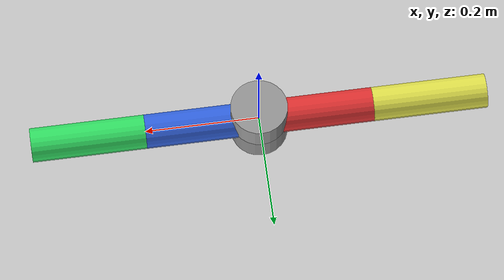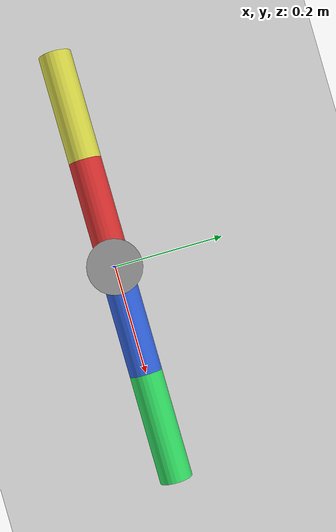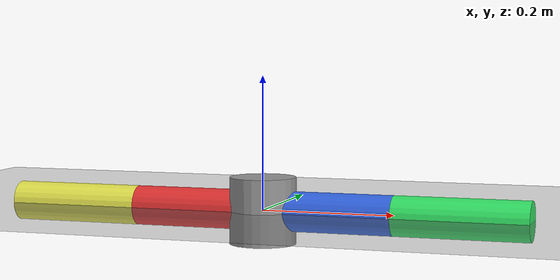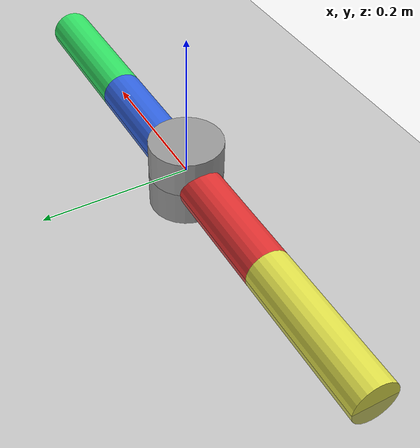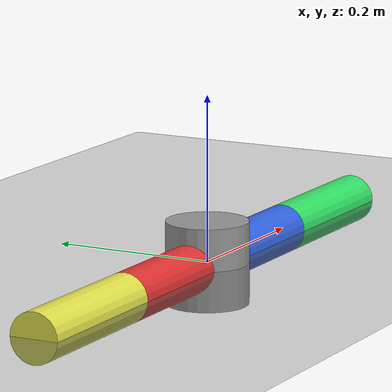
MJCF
<mujoco model="simple_2dof_robot_with_two_arms">
  <option iterations="50" timestep="0.001" solver="PGS" gravity="0 0 -9.81" />
  <compiler angle="radian" meshdir="meshes" eulerseq="zyx" autolimits="true" />
  <default>
    <joint limited="true" damping="0.01" armature="0.01" frictionloss="0.01" />
    <geom condim="4" contype="1" conaffinity="15" friction="0.9 0.2 0.2" solref="0.001 2" />
    <motor ctrllimited="true" />
    <equality solref="0.001 2" />
    <default class="visualgeom">
      <geom material="visualgeom" condim="1" contype="0" conaffinity="0" />
    </default>
  </default>

  <worldbody>
    <light directional="true" diffuse="0.4 0.4 0.4" specular="0.1 0.1 0.1" pos="0 0 5.0" dir="0 0 -1" castshadow="false" />
    <light directional="true" diffuse="0.6 0.6 0.6" specular="0.2 0.2 0.2" pos="0 0 4" dir="0 0 -1" />
    <geom name="ground" type="plane" pos="0 0 0" size="100 100 0.001" quat="1 0 0 0" material="matplane" condim="3" conaffinity="15" />

    <camera name="fixed" pos="0 -3.0 0.5" xyaxes="1 0 0 0 0 1" />
    <camera name="track" mode="trackcom" pos="0 -3.0 0.5" xyaxes="1 0 0 0 0 1" />

    <body name="root" pos="0 0 0" quat="1 0 0 0">
      <!-- No joint here: root body fixed to world -->
      <inertial pos="0 0 0" mass="1" diaginertia="0.01 0.01 0.01" />

      <site name="imu" size="0.01" pos="0 0 0" />

      <body name="base_link">
        <inertial pos="0 0 0" mass="2.0" diaginertia="0.01 0.01 0.01" />
        <joint name="base_joint" type="hinge" pos="0 0 0" axis="0 0 1" range="-3.14 3.14" actuatorfrcrange="-10 10" />
        <geom size="0.05 0.05" type="cylinder" rgba="0.6 0.6 0.6 1" contype="1" conaffinity="0" density="0" group="1" class="visualgeom" />
        <geom type="cylinder" rgba="0.6 0.6 0.6 1" size="0.05 0.05" />

        <body name="link1">
          <inertial pos="0 0 0" mass="1" diaginertia="0.005 0.005 0.005" />
          <joint name="joint1" pos="0 0 0" axis="0 0 1" range="-3.14 3.14" actuatorfrcrange="-10 10" />
          <geom size="0.03 0.1" pos="0.1 0 0" quat="0.707105 0 0.707108 0" type="cylinder" rgba="0.2 0.4 0.9 1" contype="1" conaffinity="0" density="0" group="1" class="visualgeom" />
          <geom type="cylinder" rgba="0.2 0.4 0.9 1" pos="0.1 0 0" size="0.03 0.1" quat="0.707105 0 0.707108 0" />

          <body name="link2" pos="0.2 0 0">
            <inertial pos="0 0 0" mass="1" diaginertia="0.005 0.005 0.005" />
            <joint name="joint2" pos="0 0 0" axis="0 0 1" range="-3.14 3.14" actuatorfrcrange="-10 10" />
            <geom size="0.03 0.1" pos="0.1 0 0" quat="0.707105 0 0.707108 0" type="cylinder" rgba="0.2 0.9 0.4 1" contype="1" conaffinity="0" density="0" group="1" class="visualgeom" />
            <geom type="cylinder" rgba="0.2 0.9 0.4 1" pos="0.1 0 0" size="0.03 0.1" quat="0.707105 0 0.707108 0" />
          </body>
        </body>

        <body name="link3">
          <inertial pos="0 0 0" mass="1" diaginertia="0.005 0.005 0.005" />
          <joint name="joint3" pos="0 0 0" axis="0 0 1" range="-3.14 3.14" actuatorfrcrange="-10 10" />
          <geom size="0.03 0.1" pos="-0.1 0 0" quat="0.707105 0 0.707108 0" type="cylinder" rgba="0.9 0.2 0.2 1" contype="1" conaffinity="0" density="0" group="1" class="visualgeom" />
          <geom type="cylinder" rgba="0.9 0.2 0.2 1" pos="-0.1 0 0" size="0.03 0.1" quat="0.707105 0 0.707108 0" />

          <body name="link4" pos="-0.2 0 0">
            <inertial pos="0 0 0" mass="1" diaginertia="0.005 0.005 0.005" />
            <joint name="joint4" pos="0 0 0" axis="0 0 1" range="-3.14 3.14" actuatorfrcrange="-10 10" />
            <geom size="0.03 0.1" pos="-0.1 0 0" quat="0.707105 0 0.707108 0" type="cylinder" rgba="0.9 0.9 0.3 1" contype="1" conaffinity="0" density="0" group="1" class="visualgeom" />
            <geom type="cylinder" rgba="0.9 0.9 0.3 1" pos="-0.1 0 0" size="0.03 0.1" quat="0.707105 0 0.707108 0" />
          </body>
        </body>
      </body>
    </body>
  </worldbody>

  <asset>
    <texture name="texplane" type="2d" builtin="checker" rgb1=".0 .0 .0" rgb2=".8 .8 .8" width="100" height="100" />
    <material name="matplane" reflectance="0." texture="texplane" texrepeat="1 1" texuniform="true" />
    <material name="visualgeom" rgba="0.5 0.9 0.2 1" />
  </asset>

  <actuator>
    <motor name="base_joint" joint="base_joint" ctrllimited="true" ctrlrange="-10 10" gear="1" />
    <motor name="joint1" joint="joint1" ctrllimited="true" ctrlrange="-10 10" gear="1" />
    <motor name="joint2" joint="joint2" ctrllimited="true" ctrlrange="-10 10" gear="1" />
    <motor name="joint3" joint="joint3" ctrllimited="true" ctrlrange="-10 10" gear="1" />
    <motor name="joint4" joint="joint4" ctrllimited="true" ctrlrange="-10 10" gear="1" />
  </actuator>

  <sensor>
    <actuatorpos name="base_joint_p" actuator="base_joint" />
    <actuatorvel name="base_joint_v" actuator="base_joint" />
    <actuatorfrc name="base_joint_f" actuator="base_joint" noise="0.001" />
    <actuatorpos name="joint1_p" actuator="joint1" />
    <actuatorvel name="joint1_v" actuator="joint1" />
    <actuatorfrc name="joint1_f" actuator="joint1" noise="0.001" />
    <actuatorpos name="joint2_p" actuator="joint2" />
    <actuatorvel name="joint2_v" actuator="joint2" />
    <actuatorfrc name="joint2_f" actuator="joint2" noise="0.001" />
    <actuatorpos name="joint3_p" actuator="joint3" />
    <actuatorvel name="joint3_v" actuator="joint3" />
    <actuatorfrc name="joint3_f" actuator="joint3" noise="0.001" />
    <framequat name="orientation" objtype="site" noise="0.001" objname="imu" />
    <gyro name="angular-velocity" site="imu" noise="0.005" cutoff="34.9" />
  </sensor>
</mujoco>
